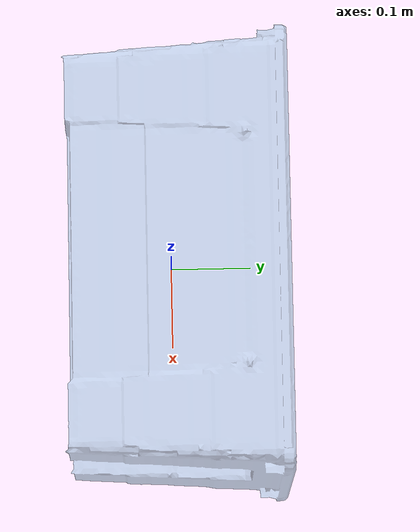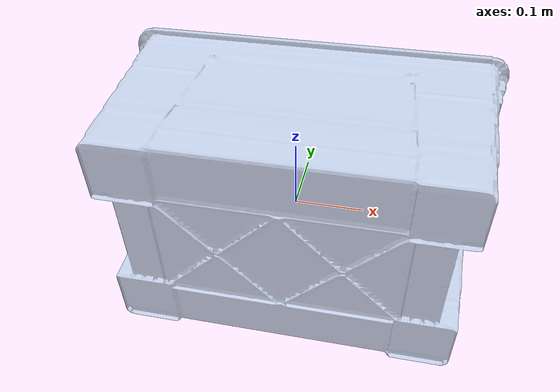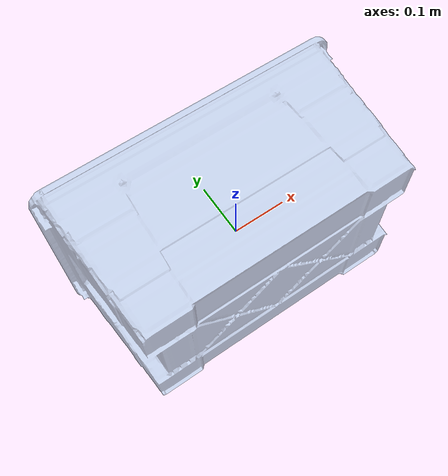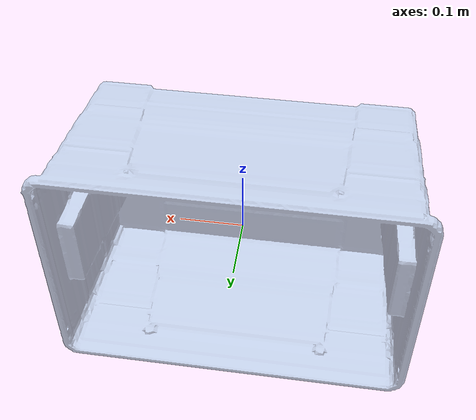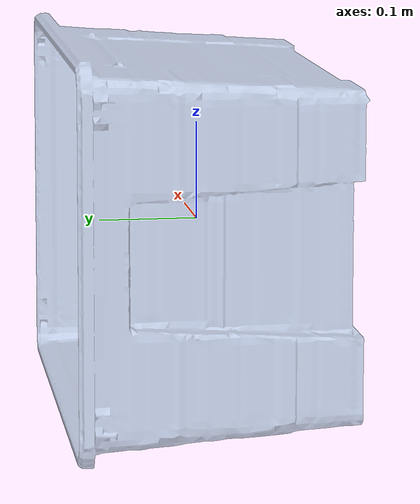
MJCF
<mujoco model="plasticbox">
    <compiler meshdir="./"/>

    <default>
        <geom friction="0.9 0.5 0.5" rgba="0.7 0.8 0.9 0.7"/>
        <joint damping="0.5"/>
    </default>

    <asset>
        <mesh name="plasticbox_mesh" file="plasticbox.obj" scale="1 1 1"/>
    </asset>

    <worldbody>
        <body name="plasticbox_link">
            <inertial pos="0 0 0" mass="0.1" diaginertia="0.002 0.002 0.002"/>
            <geom type="mesh" mesh="plasticbox_mesh"
                  pos="0 0 0" quat="1 0 0 0"
                  rgba="0.7 0.8 0.9 0.7"
                  friction="0.9 0.5 0.5"
                  solref="0.02 1"
                  solimp="0.9 0.95 0.001"/>
        </body>
    </worldbody>
</mujoco>
